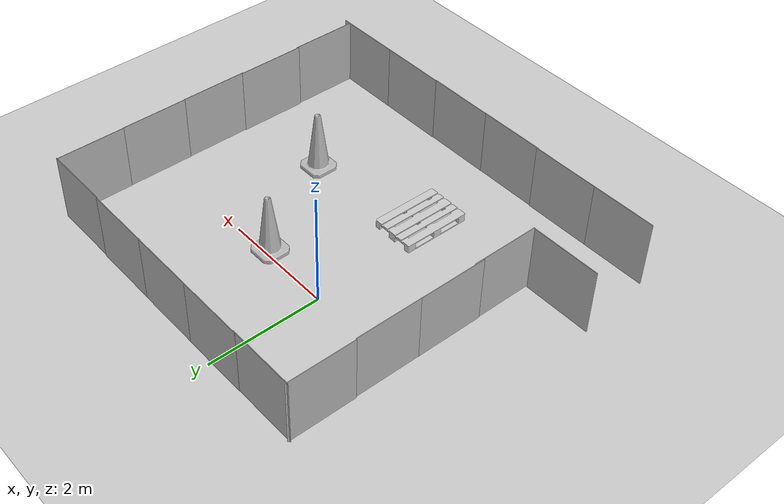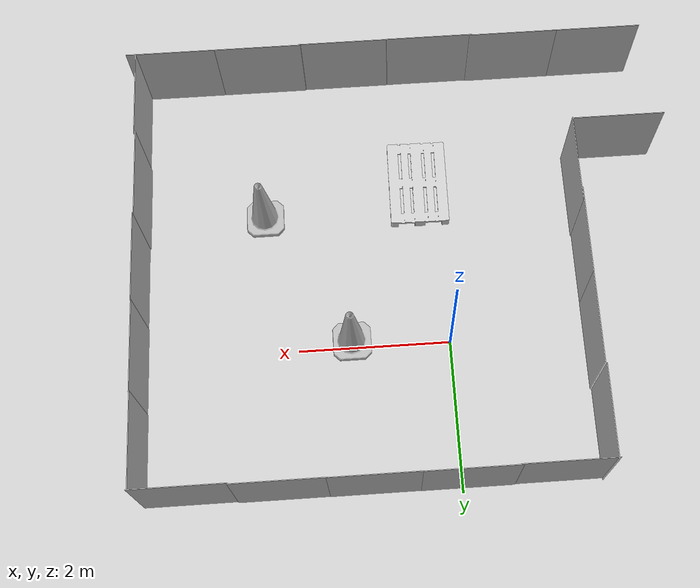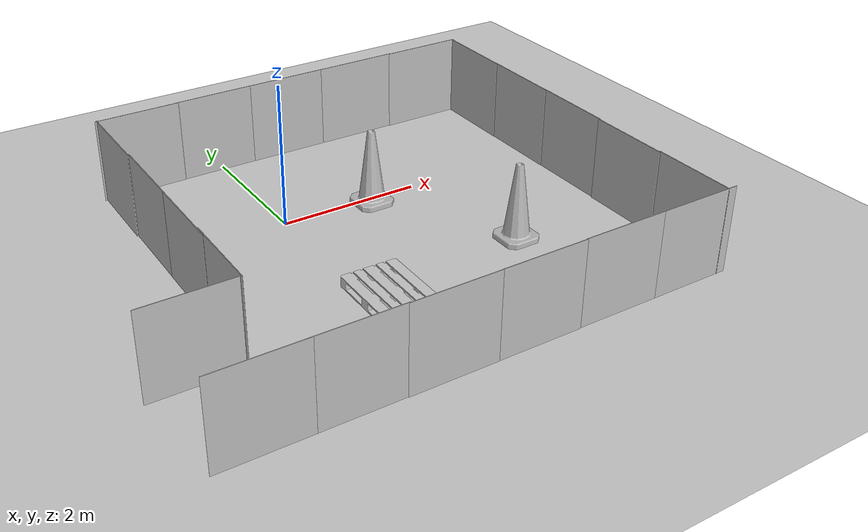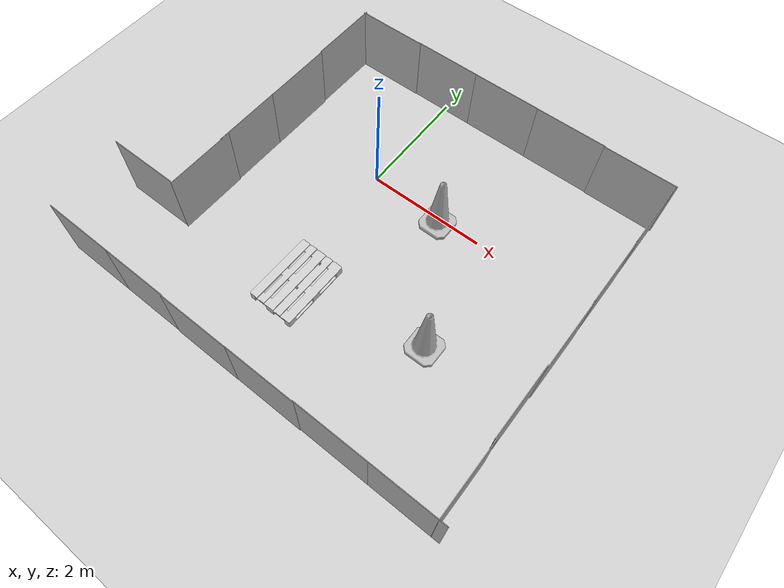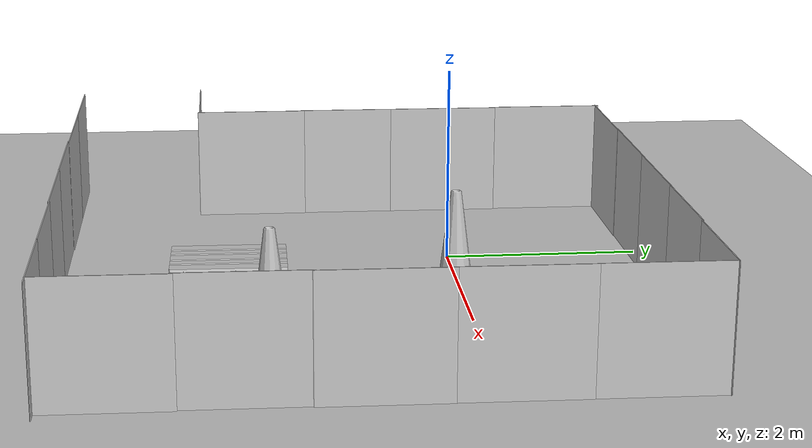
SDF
<sdf version="1.6">
 <world name="default">
  <light name="sun" type="directional">
   <pose>0 0 10 0 -0 0</pose>
   <diffuse>0.8 0.8 0.8 1</diffuse>
   <specular>0.2 0.2 0.2 1</specular>
   <attenuation>
    <range>1000</range>
    <constant>0.9</constant>
    <linear>0.01</linear>
    <quadratic>0.001</quadratic>
   </attenuation>
   <direction>-0.5 0.1 -0.9</direction>
  </light>
  <model name="ground_plane">
   <static>1</static>
   <link name="link">
    <collision name="collision">
     <geometry><plane><normal>0 0 1</normal><size>100 100</size></plane></geometry>
     <surface>
      <contact><collide_bitmask>65535</collide_bitmask></contact>
      <friction><ode><mu>100</mu><mu2>50</mu2></ode></friction>
     </surface>
    </collision>
    <visual name="visual">
     <cast_shadows>0</cast_shadows>
     <geometry><plane><normal>0 0 1</normal><size>100 100</size></plane></geometry>
     <material>
      <script><uri>file://media/materials/scripts/gazebo.material</uri><name>Gazebo/Grey</name></script>
     </material>
    </visual>
   </link>
  </model>
  <gravity>0 0 -9.8</gravity>
  <magnetic_field>6e-06 2.3e-05 -4.2e-05</magnetic_field>
  <atmosphere type="adiabatic"/>
  <physics name="default_physics" default="0" type="ode">
   <max_step_size>0.001</max_step_size>
   <real_time_factor>1</real_time_factor>
   <real_time_update_rate>1000</real_time_update_rate>
  </physics>
  <scene><ambient>0.4 0.4 0.4 1</ambient><background>0.7 0.7 0.7 1</background><shadows>1</shadows></scene>
  <audio><device>default</device></audio>
  <spherical_coordinates>
   <surface_model>EARTH_WGS84</surface_model>
   <latitude_deg>0</latitude_deg>
   <longitude_deg>0</longitude_deg>
   <elevation>0</elevation>
   <heading_deg>0</heading_deg>
  </spherical_coordinates>
  <model name="nist_maze_wall_120">
   <static>1</static>
   <link name="nist_maze_wall_120_link">
    <collision name="collision">
     <geometry>
      <mesh><uri>model://nist_maze_wall_120/meshes/nist_maze_wall_120.dae</uri><scale>1 1 1</scale></mesh>
     </geometry>
    </collision>
    <visual name="visual">
     <geometry>
      <mesh><uri>model://nist_maze_wall_120/meshes/nist_maze_wall_120.dae</uri><scale>1 1 1</scale></mesh>
     </geometry>
    </visual>
   </link>
   <pose>0.0133 -4.56103 0 0 -0 0</pose>
  </model>
  <model name="nist_maze_wall_120_0">
   <static>1</static>
   <link name="nist_maze_wall_120_link">
    <collision name="collision">
     <geometry>
      <mesh><uri>model://nist_maze_wall_120/meshes/nist_maze_wall_120.dae</uri><scale>1 1 1</scale></mesh>
     </geometry>
    </collision>
    <visual name="visual">
     <geometry>
      <mesh><uri>model://nist_maze_wall_120/meshes/nist_maze_wall_120.dae</uri><scale>1 1 1</scale></mesh>
     </geometry>
    </visual>
   </link>
   <pose>-1.14846 -4.55217 0 0 -0 0</pose>
  </model>
  <model name="nist_maze_wall_120_0_clone">
   <static>1</static>
   <link name="nist_maze_wall_120_link">
    <collision name="collision">
     <geometry>
      <mesh><uri>model://nist_maze_wall_120/meshes/nist_maze_wall_120.dae</uri><scale>1 1 1</scale></mesh>
     </geometry>
    </collision>
    <visual name="visual">
     <geometry>
      <mesh><uri>model://nist_maze_wall_120/meshes/nist_maze_wall_120.dae</uri><scale>1 1 1</scale></mesh>
     </geometry>
    </visual>
   </link>
   <pose>1.17559 -4.55796 0 0 -0 0</pose>
  </model>
  <model name="nist_maze_wall_120_0_clone_0">
   <static>1</static>
   <link name="nist_maze_wall_120_link">
    <collision name="collision">
     <geometry>
      <mesh><uri>model://nist_maze_wall_120/meshes/nist_maze_wall_120.dae</uri><scale>1 1 1</scale></mesh>
     </geometry>
    </collision>
    <visual name="visual">
     <geometry>
      <mesh><uri>model://nist_maze_wall_120/meshes/nist_maze_wall_120.dae</uri><scale>1 1 1</scale></mesh>
     </geometry>
    </visual>
   </link>
   <pose>2.34327 -4.54964 0 0 -0 0</pose>
  </model>
  <model name="nist_maze_wall_120_0_clone_0_clone">
   <static>1</static>
   <link name="nist_maze_wall_120_link">
    <collision name="collision">
     <geometry>
      <mesh><uri>model://nist_maze_wall_120/meshes/nist_maze_wall_120.dae</uri><scale>1 1 1</scale></mesh>
     </geometry>
    </collision>
    <visual name="visual">
     <geometry>
      <mesh><uri>model://nist_maze_wall_120/meshes/nist_maze_wall_120.dae</uri><scale>1 1 1</scale></mesh>
     </geometry>
    </visual>
   </link>
   <pose>3.49825 -4.5493 0 0 -0 0</pose>
  </model>
  <model name="nist_maze_wall_120_0_clone_0_clone_clone">
   <static>1</static>
   <link name="nist_maze_wall_120_link">
    <collision name="collision">
     <geometry>
      <mesh><uri>model://nist_maze_wall_120/meshes/nist_maze_wall_120.dae</uri><scale>1 1 1</scale></mesh>
     </geometry>
    </collision>
    <visual name="visual">
     <geometry>
      <mesh><uri>model://nist_maze_wall_120/meshes/nist_maze_wall_120.dae</uri><scale>1 1 1</scale></mesh>
     </geometry>
    </visual>
   </link>
   <pose>4.57053 -3.36417 0 0 -0 1.56226</pose>
  </model>
  <model name="nist_maze_wall_120_0_clone_0_clone_clone_clone">
   <static>1</static>
   <link name="nist_maze_wall_120_link">
    <collision name="collision">
     <geometry>
      <mesh><uri>model://nist_maze_wall_120/meshes/nist_maze_wall_120.dae</uri><scale>1 1 1</scale></mesh>
     </geometry>
    </collision>
    <visual name="visual">
     <geometry>
      <mesh><uri>model://nist_maze_wall_120/meshes/nist_maze_wall_120.dae</uri><scale>1 1 1</scale></mesh>
     </geometry>
    </visual>
   </link>
   <pose>4.5622 -2.19975 0 0 -0 1.56226</pose>
  </model>
  <model name="nist_maze_wall_120_0_clone_0_clone_clone_clone_0">
   <static>1</static>
   <link name="nist_maze_wall_120_link">
    <collision name="collision">
     <geometry>
      <mesh><uri>model://nist_maze_wall_120/meshes/nist_maze_wall_120.dae</uri><scale>1 1 1</scale></mesh>
     </geometry>
    </collision>
    <visual name="visual">
     <geometry>
      <mesh><uri>model://nist_maze_wall_120/meshes/nist_maze_wall_120.dae</uri><scale>1 1 1</scale></mesh>
     </geometry>
    </visual>
   </link>
   <pose>4.58582 -1.0321 0 0 -0 1.56226</pose>
  </model>
  <model name="nist_maze_wall_120_0_clone_0_clone_clone_clone_1">
   <static>1</static>
   <link name="nist_maze_wall_120_link">
    <collision name="collision">
     <geometry>
      <mesh><uri>model://nist_maze_wall_120/meshes/nist_maze_wall_120.dae</uri><scale>1 1 1</scale></mesh>
     </geometry>
    </collision>
    <visual name="visual">
     <geometry>
      <mesh><uri>model://nist_maze_wall_120/meshes/nist_maze_wall_120.dae</uri><scale>1 1 1</scale></mesh>
     </geometry>
    </visual>
   </link>
   <pose>4.59 0.144948 0 0 -0 1.56226</pose>
  </model>
  <model name="nist_maze_wall_120_0_clone_0_clone_clone_clone_2">
   <static>1</static>
   <link name="nist_maze_wall_120_link">
    <collision name="collision">
     <geometry>
      <mesh><uri>model://nist_maze_wall_120/meshes/nist_maze_wall_120.dae</uri><scale>1 1 1</scale></mesh>
     </geometry>
    </collision>
    <visual name="visual">
     <geometry>
      <mesh><uri>model://nist_maze_wall_120/meshes/nist_maze_wall_120.dae</uri><scale>1 1 1</scale></mesh>
     </geometry>
    </visual>
   </link>
   <pose>4.59445 1.31316 0 0 -0 1.56226</pose>
  </model>
  <model name="nist_maze_wall_120_0_clone_0_clone_clone_0">
   <static>1</static>
   <link name="nist_maze_wall_120_link">
    <collision name="collision">
     <geometry>
      <mesh><uri>model://nist_maze_wall_120/meshes/nist_maze_wall_120.dae</uri><scale>1 1 1</scale></mesh>
     </geometry>
    </collision>
    <visual name="visual">
     <geometry>
      <mesh><uri>model://nist_maze_wall_120/meshes/nist_maze_wall_120.dae</uri><scale>1 1 1</scale></mesh>
     </geometry>
    </visual>
   </link>
   <pose>3.42313 1.31495 0 0 -0 0</pose>
  </model>
  <model name="nist_maze_wall_120_0_clone_0_clone_clone_1">
   <static>1</static>
   <link name="nist_maze_wall_120_link">
    <collision name="collision">
     <geometry>
      <mesh><uri>model://nist_maze_wall_120/meshes/nist_maze_wall_120.dae</uri><scale>1 1 1</scale></mesh>
     </geometry>
    </collision>
    <visual name="visual">
     <geometry>
      <mesh><uri>model://nist_maze_wall_120/meshes/nist_maze_wall_120.dae</uri><scale>1 1 1</scale></mesh>
     </geometry>
    </visual>
   </link>
   <pose>2.23905 1.32679 0 0 -0 0</pose>
  </model>
  <model name="nist_maze_wall_120_0_clone_0_clone_clone_2">
   <static>1</static>
   <link name="nist_maze_wall_120_link">
    <collision name="collision">
     <geometry>
      <mesh><uri>model://nist_maze_wall_120/meshes/nist_maze_wall_120.dae</uri><scale>1 1 1</scale></mesh>
     </geometry>
    </collision>
    <visual name="visual">
     <geometry>
      <mesh><uri>model://nist_maze_wall_120/meshes/nist_maze_wall_120.dae</uri><scale>1 1 1</scale></mesh>
     </geometry>
    </visual>
   </link>
   <pose>1.08304 1.32967 0 0 -0 0</pose>
  </model>
  <model name="nist_maze_wall_120_0_clone_0_clone_clone_3">
   <static>1</static>
   <link name="nist_maze_wall_120_link">
    <collision name="collision">
     <geometry>
      <mesh><uri>model://nist_maze_wall_120/meshes/nist_maze_wall_120.dae</uri><scale>1 1 1</scale></mesh>
     </geometry>
    </collision>
    <visual name="visual">
     <geometry>
      <mesh><uri>model://nist_maze_wall_120/meshes/nist_maze_wall_120.dae</uri><scale>1 1 1</scale></mesh>
     </geometry>
    </visual>
   </link>
   <pose>-0.064221 1.3321 0 0 -0 0</pose>
  </model>
  <model name="nist_maze_wall_120_0_clone_0_clone_clone_4">
   <static>1</static>
   <link name="nist_maze_wall_120_link">
    <collision name="collision">
     <geometry>
      <mesh><uri>model://nist_maze_wall_120/meshes/nist_maze_wall_120.dae</uri><scale>1 1 1</scale></mesh>
     </geometry>
    </collision>
    <visual name="visual">
     <geometry>
      <mesh><uri>model://nist_maze_wall_120/meshes/nist_maze_wall_120.dae</uri><scale>1 1 1</scale></mesh>
     </geometry>
    </visual>
   </link>
   <pose>-1.21141 1.32461 0 0 -0 0</pose>
  </model>
  <model name="nist_maze_wall_120_0_clone_0_clone_clone_5">
   <static>1</static>
   <link name="nist_maze_wall_120_link">
    <collision name="collision">
     <geometry>
      <mesh><uri>model://nist_maze_wall_120/meshes/nist_maze_wall_120.dae</uri><scale>1 1 1</scale></mesh>
     </geometry>
    </collision>
    <visual name="visual">
     <geometry>
      <mesh><uri>model://nist_maze_wall_120/meshes/nist_maze_wall_120.dae</uri><scale>1 1 1</scale></mesh>
     </geometry>
    </visual>
   </link>
   <pose>-2.26743 -4.55254 0 0 -0 0</pose>
  </model>
  <model name="nist_maze_wall_120_0_clone_0_clone_clone_6">
   <static>1</static>
   <link name="nist_maze_wall_120_link">
    <collision name="collision">
     <geometry>
      <mesh><uri>model://nist_maze_wall_120/meshes/nist_maze_wall_120.dae</uri><scale>1 1 1</scale></mesh>
     </geometry>
    </collision>
    <visual name="visual">
     <geometry>
      <mesh><uri>model://nist_maze_wall_120/meshes/nist_maze_wall_120.dae</uri><scale>1 1 1</scale></mesh>
     </geometry>
    </visual>
   </link>
   <pose>-2.40816 -3.19383 0 0 -0 0</pose>
  </model>
  <model name="nist_maze_wall_120_0_clone_0_clone_clone_clone_2_clone">
   <static>1</static>
   <link name="nist_maze_wall_120_link">
    <collision name="collision">
     <geometry>
      <mesh><uri>model://nist_maze_wall_120/meshes/nist_maze_wall_120.dae</uri><scale>1 1 1</scale></mesh>
     </geometry>
    </collision>
    <visual name="visual">
     <geometry>
      <mesh><uri>model://nist_maze_wall_120/meshes/nist_maze_wall_120.dae</uri><scale>1 1 1</scale></mesh>
     </geometry>
    </visual>
   </link>
   <pose>-1.18533 1.35296 0 0 -0 1.56226</pose>
  </model>
  <model name="nist_maze_wall_120_0_clone_0_clone_clone_clone_2_clone_0">
   <static>1</static>
   <link name="nist_maze_wall_120_link">
    <collision name="collision">
     <geometry>
      <mesh><uri>model://nist_maze_wall_120/meshes/nist_maze_wall_120.dae</uri><scale>1 1 1</scale></mesh>
     </geometry>
    </collision>
    <visual name="visual">
     <geometry>
      <mesh><uri>model://nist_maze_wall_120/meshes/nist_maze_wall_120.dae</uri><scale>1 1 1</scale></mesh>
     </geometry>
    </visual>
   </link>
   <pose>-1.17853 0.15774 0 0 -0 1.56226</pose>
  </model>
  <model name="nist_maze_wall_120_0_clone_0_clone_clone_clone_2_clone_1">
   <static>1</static>
   <link name="nist_maze_wall_120_link">
    <collision name="collision">
     <geometry>
      <mesh><uri>model://nist_maze_wall_120/meshes/nist_maze_wall_120.dae</uri><scale>1 1 1</scale></mesh>
     </geometry>
    </collision>
    <visual name="visual">
     <geometry>
      <mesh><uri>model://nist_maze_wall_120/meshes/nist_maze_wall_120.dae</uri><scale>1 1 1</scale></mesh>
     </geometry>
    </visual>
   </link>
   <pose>-1.19032 -1.0015 0 0 -0 1.56226</pose>
  </model>
  <model name="nist_maze_wall_120_0_clone_0_clone_clone_clone_2_clone_2">
   <static>1</static>
   <link name="nist_maze_wall_120_link">
    <collision name="collision">
     <geometry>
      <mesh><uri>model://nist_maze_wall_120/meshes/nist_maze_wall_120.dae</uri><scale>1 1 1</scale></mesh>
     </geometry>
    </collision>
    <visual name="visual">
     <geometry>
      <mesh><uri>model://nist_maze_wall_120/meshes/nist_maze_wall_120.dae</uri><scale>1 1 1</scale></mesh>
     </geometry>
    </visual>
   </link>
   <pose>-1.18615 -2.0191 0 0 -0 1.56226</pose>
  </model>
  <model name="euro_pallet">
   <link name="link">
    <inertial>
     <mass>20</mass>
     <inertia><ixx>2.43</ixx><ixy>0</ixy><ixz>0</ixz><iyy>1.1</iyy><iyz>0</iyz><izz>3.47</izz></inertia>
    </inertial>
    <collision name="collision">
     <pose>0 0 0.05 0 -0 0</pose>
     <geometry><mesh><uri>model://euro_pallet/meshes/pallet.dae</uri><scale>0.1 0.1 0.1</scale></mesh></geometry>
    </collision>
    <visual name="visual">
     <pose>0 0 0.05 0 -0 0</pose>
     <geometry><mesh><uri>model://euro_pallet/meshes/pallet.dae</uri><scale>0.1 0.1 0.1</scale></mesh></geometry>
    </visual>
   </link>
   <pose>0.258802 -2.30456 0.072 0 0 -0.013016</pose>
  </model>
  <model name="Construction Cone">
   <link name="link">
    <collision name="collision">
     <geometry>
      <mesh><scale>10 10 10</scale><uri>model://construction_cone/meshes/construction_cone.dae</uri></mesh>
     </geometry>
    </collision>
    <visual name="visual">
     <geometry>
      <mesh><scale>10 10 10</scale><uri>model://construction_cone/meshes/construction_cone.dae</uri></mesh>
     </geometry>
    </visual>
    <inertial>
     <inertia><ixx>1</ixx><ixy>0</ixy><ixz>0</ixz><iyy>1</iyy><iyz>0</iyz><izz>1</izz></inertia>
     <mass>1</mass>
    </inertial>
   </link>
   <pose>1.29443 -0.08951 -0 0 -0 0</pose>
  </model>
  <model name="Construction Cone_0">
   <link name="link">
    <collision name="collision">
     <geometry>
      <mesh><scale>10 10 10</scale><uri>model://construction_cone/meshes/construction_cone.dae</uri></mesh>
     </geometry>
    </collision>
    <visual name="visual">
     <geometry>
      <mesh><scale>10 10 10</scale><uri>model://construction_cone/meshes/construction_cone.dae</uri></mesh>
     </geometry>
    </visual>
    <inertial>
     <inertia><ixx>1</ixx><ixy>0</ixy><ixz>0</ixz><iyy>1</iyy><iyz>0</iyz><izz>1</izz></inertia>
     <mass>1</mass>
    </inertial>
   </link>
   <pose>2.38554 -1.93468 -0 0 -0 0</pose>
  </model>
 </world>
</sdf>
